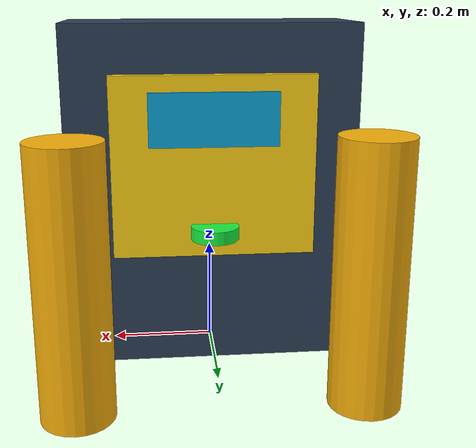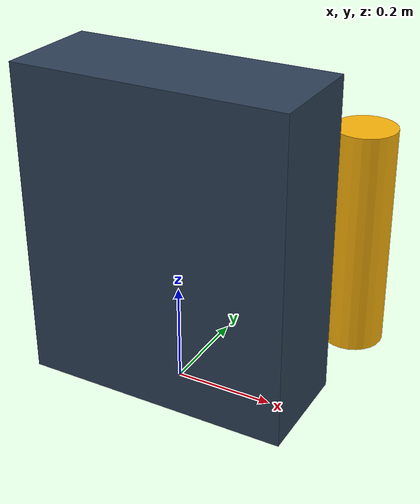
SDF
<?xml version="1.0"?>
<sdf version="1.8">
  <model name="warehouse_charger">
    <static>true</static>
    <link name="charger">
      <collision name="cabinet_collision">
        <pose>0 0 0.325 0 0 0</pose>
        <geometry>
          <box>
            <size>0.55 0.22 0.65</size>
          </box>
        </geometry>
      </collision>
      <collision name="left_bollard_collision">
        <pose>0.25 0.31 0.24 0 0 0</pose>
        <geometry>
          <cylinder>
            <radius>0.065</radius>
            <length>0.48</length>
          </cylinder>
        </geometry>
      </collision>
      <collision name="right_bollard_collision">
        <pose>-0.25 0.31 0.24 0 0 0</pose>
        <geometry>
          <cylinder>
            <radius>0.065</radius>
            <length>0.48</length>
          </cylinder>
        </geometry>
      </collision>

      <visual name="cabinet">
        <pose>0 0 0.325 0 0 0</pose>
        <geometry>
          <box>
            <size>0.55 0.22 0.65</size>
          </box>
        </geometry>
        <material>
          <ambient>0.12 0.16 0.22 1</ambient>
          <diffuse>0.18 0.25 0.34 1</diffuse>
        </material>
      </visual>
      <visual name="front_panel">
        <pose>0 0.116 0.39 0 0 0</pose>
        <geometry>
          <box>
            <size>0.38 0.025 0.34</size>
          </box>
        </geometry>
        <material>
          <ambient>0.95 0.72 0.05 1</ambient>
          <diffuse>1.0 0.82 0.08 1</diffuse>
          <emissive>0.18 0.12 0.01 1</emissive>
        </material>
      </visual>
      <visual name="display">
        <pose>0 0.131 0.48 0 0 0</pose>
        <geometry>
          <box>
            <size>0.24 0.012 0.10</size>
          </box>
        </geometry>
        <material>
          <diffuse>0.05 0.65 0.85 1</diffuse>
          <emissive>0.02 0.30 0.45 1</emissive>
        </material>
      </visual>
      <visual name="status_light">
        <pose>0 0.14 0.27 0 0 0</pose>
        <geometry>
          <cylinder>
            <radius>0.045</radius>
            <length>0.025</length>
          </cylinder>
        </geometry>
        <material>
          <diffuse>0.10 0.95 0.25 1</diffuse>
          <emissive>0.04 0.50 0.10 1</emissive>
        </material>
      </visual>
      <visual name="left_bollard">
        <pose>0.25 0.31 0.24 0 0 0</pose>
        <geometry>
          <cylinder>
            <radius>0.065</radius>
            <length>0.48</length>
          </cylinder>
        </geometry>
        <material>
          <diffuse>0.98 0.70 0.04 1</diffuse>
        </material>
      </visual>
      <visual name="right_bollard">
        <pose>-0.25 0.31 0.24 0 0 0</pose>
        <geometry>
          <cylinder>
            <radius>0.065</radius>
            <length>0.48</length>
          </cylinder>
        </geometry>
        <material>
          <diffuse>0.98 0.70 0.04 1</diffuse>
        </material>
      </visual>
    </link>
  </model>
</sdf>
